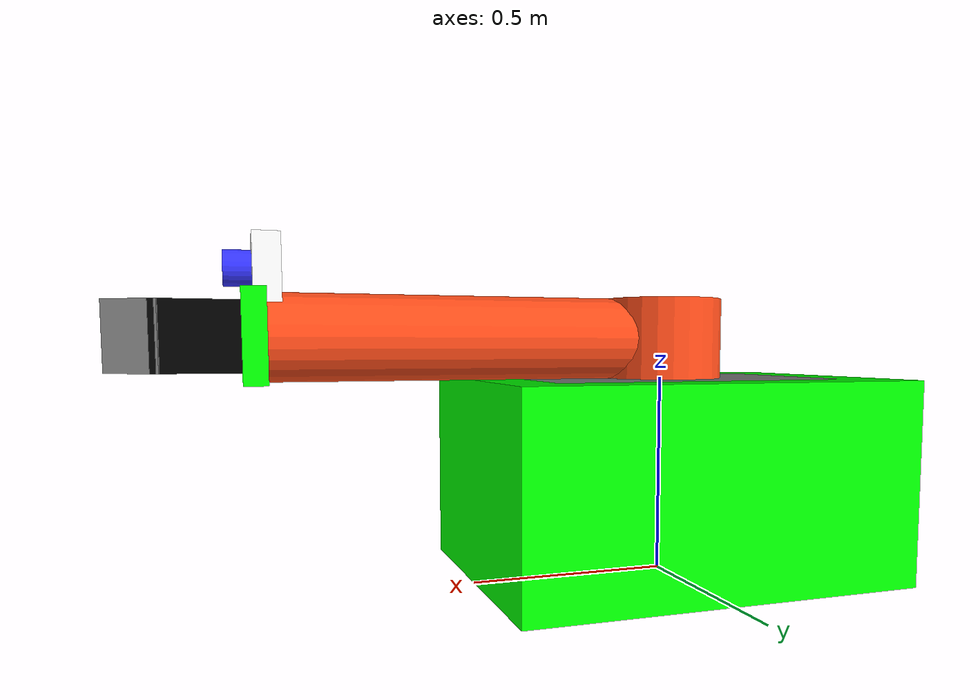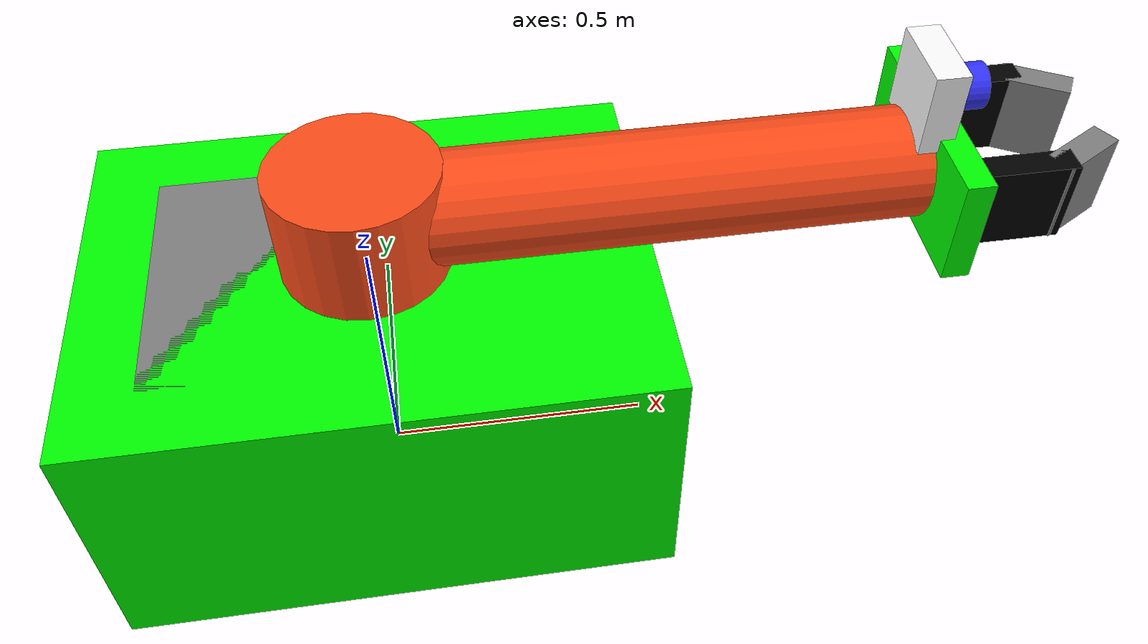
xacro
<?xml version="1.0"?>
<robot xmlns:xacro="http://www.ros.org/wiki/xacro" name="arm_project">

    <!--inertia"-->
    <xacro:macro name="inertial_sphere" params="mass radius *origin">
        <inertial>
            <xacro:insert_block name="origin"/>
            <mass value="${mass}" />
            <inertia ixx="${(2/5) * mass * (radius*radius)}" ixy="0.0" ixz="0.0"
                    iyy="${(2/5) * mass * (radius*radius)}" iyz="0.0"
                    izz="${(2/5) * mass * (radius*radius)}" />
        </inertial>
    </xacro:macro>
    <xacro:macro name="inertial_box" params="mass x y z *origin">
        <inertial>
            <xacro:insert_block name="origin"/>
            <mass value="${mass}" />
            <inertia ixx="${(1/12) * mass * (y*y+z*z)}" ixy="0.0" ixz="0.0"
                    iyy="${(1/12) * mass * (x*x+z*z)}" iyz="0.0"
                    izz="${(1/12) * mass * (x*x+y*y)}" />
        </inertial>
    </xacro:macro>
    <xacro:macro name="inertial_cylinder" params="mass length radius *origin">
        <inertial>
            <xacro:insert_block name="origin"/>
            <mass value="${mass}" />
            <inertia ixx="${(1/12) * mass * (3*radius*radius + length*length)}" ixy="0.0" ixz="0.0"
                    iyy="${(1/12) * mass * (3*radius*radius + length*length)}" iyz="0.0"
                    izz="${(1/2) * mass * (radius*radius)}" />
        </inertial>
    </xacro:macro>

    <!--Constants-->
    <xacro:property name="arm_length" value="1" />
    <xacro:property name="arm_radius" value="0.1" />

    <!-- Colors-->
    <material name="white">
        <color rgba="1 1 1 1" />
    </material>
    <material name="gray">
        <color rgba="0.5 0.5 0.5 1" />
    </material>
    <material name="orange">
        <color rgba="1 0.3 0.1 1"/>
    </material>

    <material name="blue">
        <color rgba="0.2 0.2 1 1"/>
    </material>

    <material name="black">
        <color rgba="0 0 0 1"/>
    </material>
    <material name="green">
        <color rgba="0 1 0 1"/>
    </material>
    <material name="yellow">
        <color rgba="1 1 0 1"/>
    </material>

    <!--Links-->
    <link name="world"></link>
    <link name="base_link">
        <inertial>
            <origin xyz="0.0 0.0 0.25" rpy="0.0 0.0 0.0"/>
            <mass value="12.0"/>
            <inertia ixx="2.26" ixy="0.0" ixz="0.0" iyy="6.26" iyz="0.0" izz="8.5"/>
        </inertial>
        <visual name="base_link">
            <origin xyz="0.0 0.0 0.25" rpy="0.0 0.0 0.0"/>
            <geometry>
                <box size="1.0 0.75 0.5"/>
            </geometry>
            <material name="green">
            </material>
        </visual>
        <collision>
            <origin xyz="0.0 0.0 0.25" rpy="0.0 0.0 0.0"/>
            <geometry>
                <box size="1.0 0.75 0.5"/>
            </geometry>
        </collision>
    </link>
    <link name="inside_link">
        <xacro:inertial_box mass="0.5" x="0.75" y="0.5" z="0.25">
            <origin xyz="0.0 0.0 0.125" rpy="0 0 0"/>
        </xacro:inertial_box>
        <visual name="inside_link">
            <origin xyz="0.0 0.0 0.125" rpy="0.0 0.0 0.0"/>
            <geometry>
                <box size="0.75 0.5 0.25"/>
            </geometry>
            <material name="gray">
            </material>
        </visual>
        <collision>
            <origin xyz="0.0 0.0 0.125" rpy="0.0 0.0 0.0"/>
            <geometry>
                <box size="0.75 0.5 0.25"/>
            </geometry>
        </collision>
    </link>

    <link name="arm_link">
        <xacro:inertial_cylinder mass="1.0" length="${arm_length}" radius="${arm_radius}">
            <origin xyz="${arm_length/2} 0 0" rpy="0 ${pi/2} 0"/>
        </xacro:inertial_cylinder>
        <visual name="arm_link">
            <origin xyz="${arm_length/2} 0.0 0.125" rpy="0 ${pi/2} 0.0"/>
            <geometry>
                    <cylinder radius="0.1" length="1.0"/>
            </geometry>
            <material name="orange">
            </material>
        </visual>
        <collision>
            <origin xyz="${arm_length/2} 0.0 0.475" rpy="0 ${pi/2} 0.0"/>
            <geometry>
                    <cylinder radius="0.1" length="1.0"/>
            </geometry>
        </collision>
    </link>
    <link name="cyliner_inside">
        <xacro:inertial_cylinder mass="0.05" length="0.2" radius="0.15">
            <origin xyz="${arm_length/2} 0 0" rpy="0 ${pi/2} 0"/>
        </xacro:inertial_cylinder>
        <visual name="cyliner_inside">
            <origin xyz="0.0 0.0 0.0" rpy="0.0 0.0 0.0"/>
                <geometry>
                    <cylinder radius="0.15" length="0.2"/>
                </geometry>
            <material name="orange">
            </material>
        </visual>
        <collision>
            <origin xyz="0.0 0.0 0.6" rpy="0.0 0.0 0.0"/>
            <geometry>
                <cylinder radius="0.15" length="0.2"/>
            </geometry>
        </collision>
    </link>
    <link name="rl">
        <xacro:inertial_box mass="0.005" x="0.05" y="0.4" z="0.2">
            <origin xyz=".0 0.0 0.0" rpy="0 0 0"/>
        </xacro:inertial_box>
        <visual name="rl">
            <origin xyz="0.0 0.0 0.0" rpy="0.0 0.0 0.0"/>
            <geometry>
                <box size="0.05 0.4 0.2"/>
            </geometry>
            <material name="green">
            </material>
        </visual>
        <collision>
            <origin xyz="0.0 0.0 0.0" rpy="0.0 0.0 0.0"/>
            <geometry>
                <box size="0.05 0.4 0.2"/>
            </geometry>
        </collision>
    </link>
    <link name="r1">
        <xacro:inertial_box mass="0.005" x="0.2" y="0.05" z="0.15">
            <origin xyz=".0 0.0 0.0" rpy="0 0 0"/>
        </xacro:inertial_box>
        <visual name="r1">
            <origin xyz="0 0 0" rpy="0.0 0.0 0.0"/>
            <geometry>
                <box size="0.2 0.05 0.15"/>
            </geometry>
            <material name="black"/>
        </visual>
        <collision>
            <origin xyz="0 0 0" rpy="0.0 0.0 0.0"/>
            <geometry>
                <box size="0.2 0.05 0.15"/>
            </geometry>
        </collision>
    </link>
    <link name="l1">
        <xacro:inertial_box mass="0.005" x="0.2" y="0.05" z="0.15">
            <origin xyz=".0 0.0 0.0" rpy="0 0 0"/>
        </xacro:inertial_box>
        <visual name="l1">
            <origin xyz="0 0 0" rpy="0.0 0.0 0.0"/>
            <geometry>
                <box size="0.2 0.05 0.15"/>
            </geometry>
            <material name="black"/>
        </visual>
        <collision>
             <origin xyz="0 0 0 " rpy="0.0 0.0 0.0"/>
            <geometry>
                <box size="0.2 0.05 0.15"/>
            </geometry>
        </collision>
    </link>
    <link name="r11">
        <xacro:inertial_box mass="0.0025" x="0.125" y="0.05" z="0.15">
            <origin xyz=".0 0.0 0.0" rpy="0 0 -0.52"/>
        </xacro:inertial_box>
        <visual name="r11">
            <origin xyz="0 0.0 0.0" rpy="0.0 0.0 -0.52"/>
            <geometry>
                <box size="0.125 0.05 0.15"/>
            </geometry>
            <material name="gray"/>
        </visual>
        <collision>
            <origin xyz="0 0.0 0.0" rpy="0.0 0.0 -0.52"/>
            <geometry>
                <box size="0.125 0.05 0.15"/>
            </geometry>
        </collision>
    </link>
    <link name="l11">
        <xacro:inertial_box mass="0.0025" x="0.125" y="0.05" z="0.15">
            <origin xyz=".0 0.0 0.0" rpy="0 0 -0.52"/>
        </xacro:inertial_box>
        <visual name="l11">
            <origin xyz="0 0 0" rpy="0.0 0.0 0.52"/>
            <geometry>
                <box size="0.125 0.05 0.15"/>
            </geometry>
            <material name="gray"/>
        </visual>
        <collision>
            <origin xyz="0 0 0" rpy="0.0 0.0 0.52"/>
            <geometry>
                <box size="0.125 0.05 0.15"/>
            </geometry>
        </collision>
    </link>
    <link name="camera_link">
        <visual>
            <origin xyz="-0.03 0 0" rpy="0 0 0"/>
            <geometry>
                <box size="0.06 0.15 0.15" />
            </geometry>
            <material name="white" />
        </visual>
        <visual>
            <origin xyz="0.03 0 0" rpy="0 ${pi/2} 0"/>
            <geometry>
                <cylinder length="0.06" radius="0.04" />
            </geometry>
            <material name="blue" />
        </visual>
        <collision>
            <origin xyz="0.0 0 0" rpy="0 0 0"/>
            <geometry>
                <box size="0.12 0.15 0.15" />
            </geometry>
        </collision>
        <xacro:inertial_box mass="0.1" x="0.12" y="0.15" z="0.15">
            <origin xyz="0.0 0 0" rpy="0 0 0"/>
        </xacro:inertial_box>
    </link>

    <!-- Joints-->
    <joint name="world_base" type="fixed">
        <parent link="world" />
        <child link="base_link" />
    </joint>

    <joint name="base_inside" type="prismatic">
        <origin xyz="0 0 0.25" rpy="0 0 0"/>
        <parent link="base_link"/>
        <child link="inside_link"/>
        <axis xyz="0 0 1"/>
        <limit lower="0" upper="0.25" velocity="100" effort="100"/>
    </joint>

    <joint name="inside_cy" type="fixed">
        <parent link="inside_link"/>
        <child link="cyliner_inside"/>
        <origin xyz="0.0 0.0 0.35" rpy="0.0 0.0 0.0"/>
    </joint>

    <joint name="inside_arm" type="revolute">
        <origin xyz="0.0 0.0 -0.125" rpy="0.0 0.0 0.0"/>
        <parent link="cyliner_inside"/>
        <child link="arm_link"/>
        <axis xyz="0.0 0.0 0.6"/>
        <limit lower="0" upper="${-pi}" effort="0" velocity="0.5" />
    </joint>
    <joint name="rl_arm" type="fixed">
        <parent link="arm_link"/>
        <child link="rl"/>
        <origin xyz="1.0 0.0 0.125" rpy="0.0 0.0 0.0"/>
    </joint>
    <joint name="rl_l1" type="revolute">
        <parent link="rl"/>
        <child link="l1"/>
        <axis xyz="0 0 1"/>
        <limit lower="0" upper="0.523" velocity="50.0" effort="1000.0"/>
        <origin xyz="0.1 -0.125 0.0" rpy="0 0 0"/>
    </joint>
    <joint name="rl_r1" type="revolute">
        <parent link="rl"/>
        <child link="r1"/>
        <axis xyz="0 0 1"/>
        <limit lower="0" upper="-0.523" velocity="50.0" effort="1000.0"/>
        <origin xyz="0.1 0.125 0.0" rpy="0 0 0"/>
    </joint>
    <joint name="r1_r11" type="fixed">
        <parent link="r1"/>
        <child link="r11"/>
        <origin xyz="0.125 -0.025 0" rpy="0.0 0.0 0.0"/>
    </joint>
    <joint name="l1_l11" type="fixed">
        <parent link="l1"/>
        <child link="l11"/>
        <origin xyz="0.125 0.025 0" rpy="0.0 0.0 0.0"/>
    </joint>
    <joint name="camera_joint" type="fixed">
        <origin xyz="0 0 ${arm_radius + 0.05}" rpy="0 0 0"/>
        <parent link="rl"/>
        <child link="camera_link"/>
    </joint>
    <joint name="camera_optical_joint" type="fixed">
        <origin xyz="0 0 0" rpy="-1.571 0 -1.571" />
        <parent link="camera_link" />
        <child link="camera_link_optical" />
    </joint>

    <link name="camera_link_optical"></link>

    <!--Gazebo reference -->
    <!-- Instead, we need to add gazebo tags for our links that refer to Gazebo materials -->

    <gazebo reference="base_link">
        <mu1>0.2</mu1>
        <mu2>0.2</mu2>
        <material>Gazebo/Black</material>
    </gazebo>

    <gazebo reference="inside_link">
        <mu1>0.2</mu1>
        <mu2>0.2</mu2>
        <material>Gazebo/Gray</material>
    </gazebo>

    <gazebo reference="arm_link">
        <mu1>0.2</mu1>
        <mu2>0.2</mu2>
        <material>Gazebo/Orange</material>
    </gazebo>
    <gazebo reference="cyliner_inside">
        <mu1>0.2</mu1>
        <mu2>0.2</mu2>
        <material>Gazebo/Orange</material>
    </gazebo>

    <gazebo reference="rl">
        <mu1>0.2</mu1>
        <mu2>0.2</mu2>
        <material>Gazebo/Green</material>
    </gazebo>

    <gazebo reference="r1">
        <mu1>0.2</mu1>
        <mu2>0.2</mu2>
        <material>Gazebo/White</material>
    </gazebo>
    <gazebo reference="l1">
        <mu1>0.2</mu1>
        <mu2>0.2</mu2>
        <material>Gazebo/White</material>
    </gazebo>

    <gazebo reference="r11">
        <mu1>0.2</mu1>
        <mu2>0.2</mu2>
        <material>Gazebo/White</material>
    </gazebo>

    <gazebo reference="l11">
        <mu1>0.2</mu1>
        <mu2>0.2</mu2>
        <material>Gazebo/White</material>
    </gazebo>

    <!-- Gazebo Plugin and Transmission-->
    <!-- Gazebo requires the use of plugins to interact with other systems such as ROS. -->

    <!-- This plugin will publish the joint_states for the selected joints
            (which robot_state_publisher can then use to broadcast the approprate tf). -->

            <gazebo>
                <plugin name="JointStatePublisher"
                    filename="libgazebo_ros_joint_state_publisher.so">
                    <update_rate>2</update_rate>
                    <joint_name>base_inside</joint_name>
                    <joint_name>inside_arm</joint_name>
                    <joint_name>rl_arm</joint_name>
                    <joint_name>rl_l1</joint_name>
                    <joint_name>rl_r1</joint_name>
                </plugin>
            </gazebo>
            <transmission name="base_inside">
                <type>transmission_interface/SimpleTransmission</type>
                <joint name="base_inside">
                  <hardwareInterface>hardware_interface/PositionJointInterface</hardwareInterface>
                </joint>
                <actuator name="motor1">
                  <hardwareInterface>hardware_interface/PositionJointInterface</hardwareInterface>
                  <mechanicalReduction>1</mechanicalReduction>
                </actuator>
            </transmission>
            <transmission name="inside_arm">
                <type>transmission_interface/</type>
                <joint name="inside_arm">
                  <hardwareInterface>hardware_interface/PositionJointInterface</hardwareInterface>
                </joint>
                <actuator name="inside_arm">
                  <hardwareInterface>hardware_interface/PositionJointInterface</hardwareInterface>
                  <mechanicalReduction>1</mechanicalReduction>
                </actuator>
            </transmission>
            <transmission name="rl_l1">
                <type>transmission_interface/SimpleTransmission</type>
                <joint name="rl_l1">
                  <hardwareInterface>hardware_interface/PositionJointInterface</hardwareInterface>
                </joint>
                <actuator name="rl_l1">
                  <hardwareInterface>hardware_interface/PositionJointInterface</hardwareInterface>
                  <mechanicalReduction>1</mechanicalReduction>
                </actuator>
            </transmission>
            <transmission name="rl_r1">
                <type>transmission_interface/SimpleTransmission</type>
                <joint name="rl_r1">
                  <hardwareInterface>hardware_interface/PositionJointInterface</hardwareInterface>
                </joint>
                <actuator name="rl_r1">
                  <hardwareInterface>EffortJointInterface</hardwareInterface>
                  <mechanicalReduction>1</mechanicalReduction>
                </actuator>
            </transmission>
            <gazebo>
                <plugin name="gazebo_ros_control" filename="libgazebo_ros_control.so">
                  <robotNamespace>/arm</robotNamespace>
                  <robotSimType>gazebo_ros_control/DefaultRobotHWSim</robotSimType>
                  <legacyModeNS>true</legacyModeNS>
                  <controlPeriod>1</controlPeriod>

                </plugin>
              </gazebo>

            <gazebo>
                <plugin name="gazebo_ros_joint_pose_trajectory"
                    filename="libgazebo_ros_joint_pose_trajectory.so">
                    <update_rate>2</update_rate>
                </plugin>
            </gazebo>

            <gazebo reference="camera_link">
                <sensor type="depth" name="my_camera">
                    <update_rate>20</update_rate>
                    <visualize>true</visualize>
                    <camera name="cam">
                        <horizontal_fov>1.3962634</horizontal_fov>
                        <image>
                            <width>640</width>
                            <height>480</height>
                            <format>R8B8G8</format>
                        </image>
                        <clip>
                            <near>0.02</near>
                            <far>300</far>
                        </clip>
                        <noise>
                            <type>gaussian</type>
                            <mean>0.0</mean>
                            <stddev>0.007</stddev>
                        </noise>
                    </camera>
                    <plugin name="camera_controller" filename="libgazebo_ros_camera.so">
                        <frame_name>camera_link_optical</frame_name>
                        <min_depth>0.1</min_depth>
                        <max_depth>500</max_depth>
                    </plugin>
                </sensor>
            </gazebo>
            <gazebo reference="camera">
                <sensor type="camera" name="camera1">
                  <update_rate>30.0</update_rate>
                  <camera name="head">
                    <horizontal_fov>1.3962634</horizontal_fov>
                    <image>
                      <width>800</width>
                      <height>800</height>
                      <format>R8G8B8</format>
                    </image>
                    <clip>
                      <near>0.02</near>
                      <far>300</far>
                    </clip>
                    <noise>
                      <type>gaussian</type>
                      <mean>0.0</mean>
                      <stddev>0.007</stddev>
                    </noise>
                  </camera>
                  <plugin name="camera_controller" filename="libgazebo_ros_camera.so">
                    <alwaysOn>true</alwaysOn>
                    <updateRate>0.0</updateRate>
                    <cameraName>arm_project1/camera1</cameraName>
                    <imageTopicName>image_raw</imageTopicName>
                    <cameraInfoTopicName>rgb/camera_info</cameraInfoTopicName>
                    <frameName>Camera</frameName>
                    <hackBaseline>0.07</hackBaseline>
                    <distortionK1>0.0</distortionK1>
                    <distortionK2>0.0</distortionK2>
                    <distortionK3>0.0</distortionK3>
                    <distortionT1>0.0</distortionT1>
                    <distortionT2>0.0</distortionT2>
                  </plugin>
                </sensor>
            </gazebo>

</robot>
